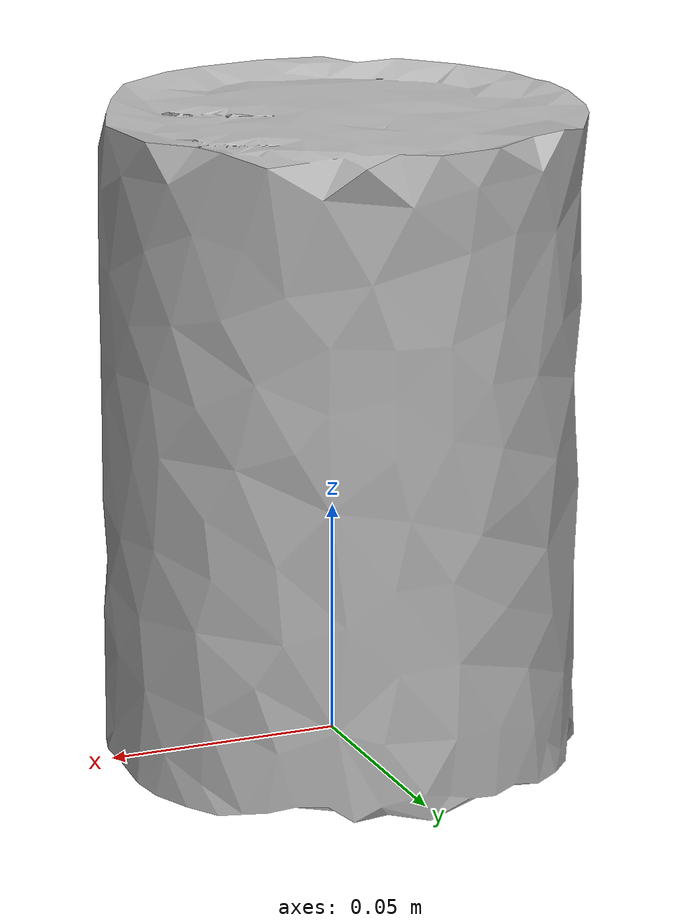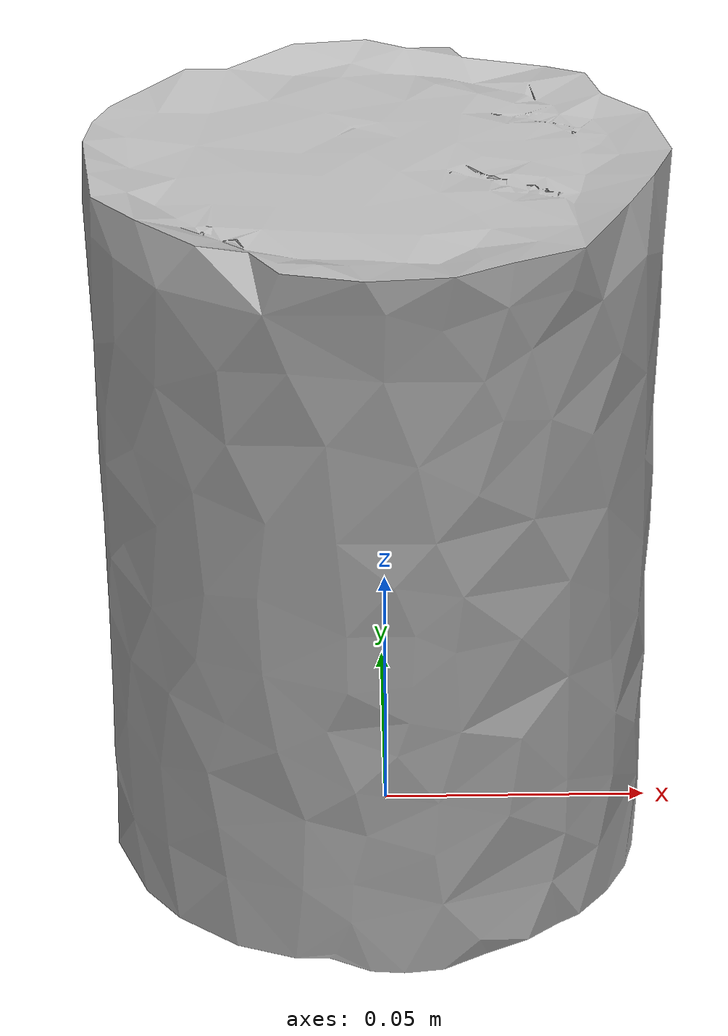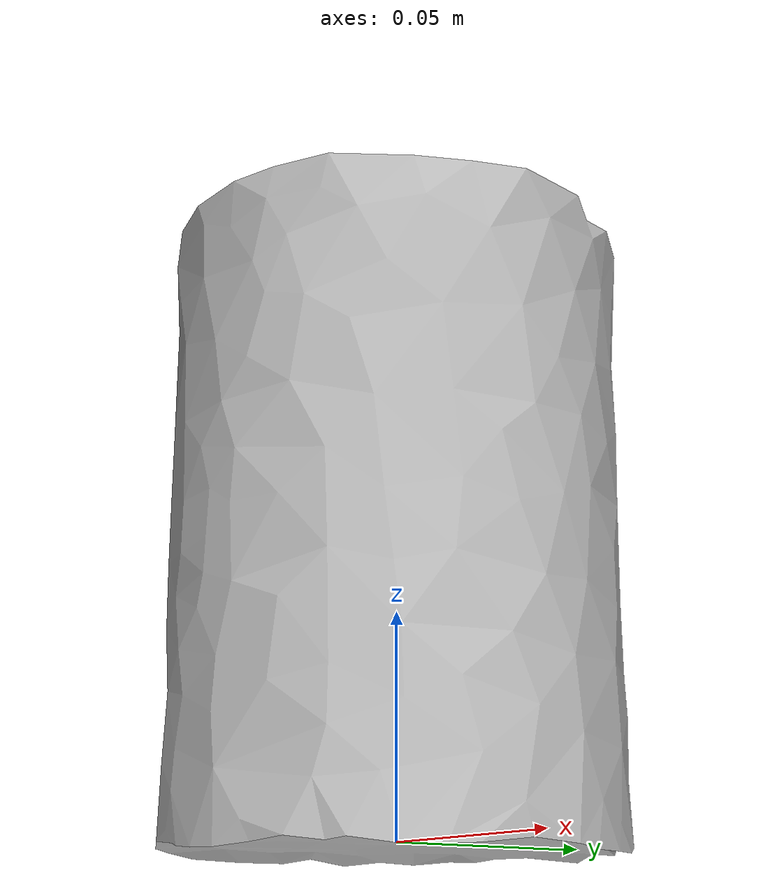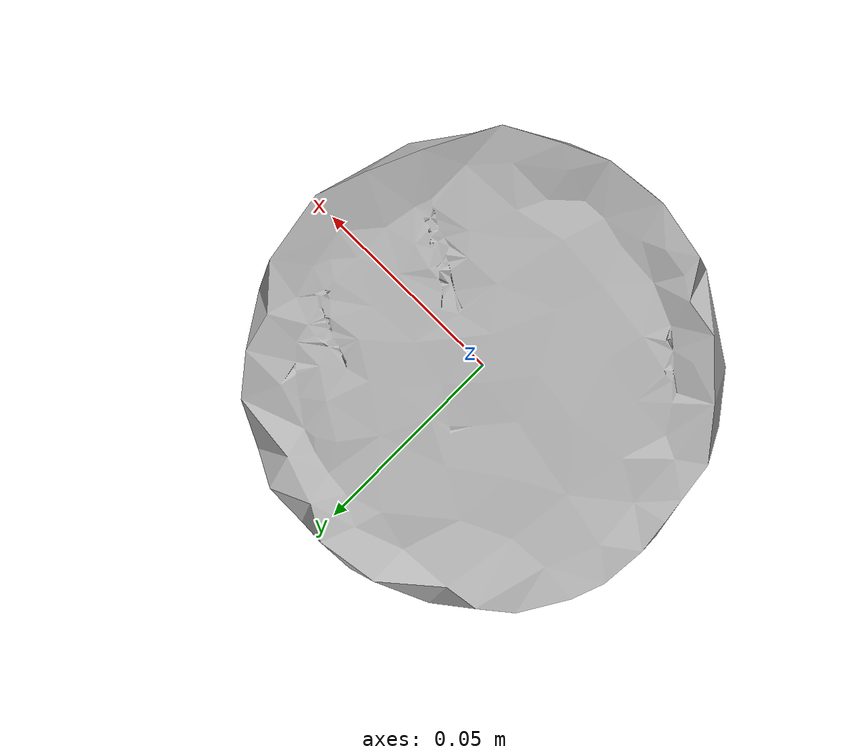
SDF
<?xml version="1.0" ?>
<sdf version="1.5">
  <model name="master_chef_can">
    <link name="link">
      <pose>0 0 0.07 0 0 0</pose>
      <inertial>
        <mass>0.390</mass>
        <inertia>
          <ixx>0.00058</ixx>
          <ixy>0</ixy>
          <ixz>0</ixz>
          <iyy>0.00058</iyy>
          <iyz>0</iyz>
          <izz>0.00019</izz>
        </inertia>
      </inertial>
      <collision name="collision">
        <pose>0 0 -0.005 0 0 0</pose>
        <geometry>
          <cylinder>
            <radius>0.05</radius>
            <length>0.14</length>
          </cylinder>
        </geometry>
      </collision>
      <visual name="visual">
        <geometry>
          <mesh>
            <uri>model://002_master_chef_can/textured.obj</uri>
          </mesh>
        </geometry>
      </visual>
    </link>
  </model>
</sdf>
